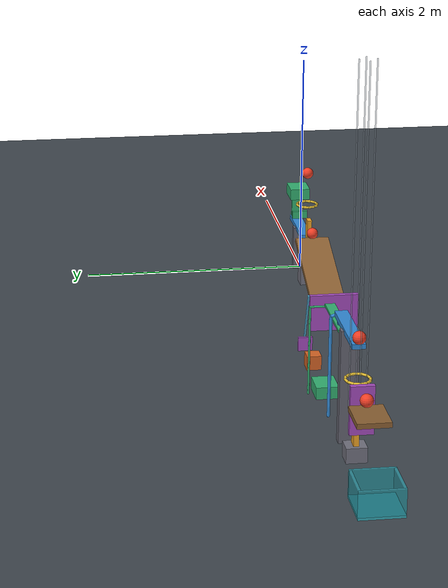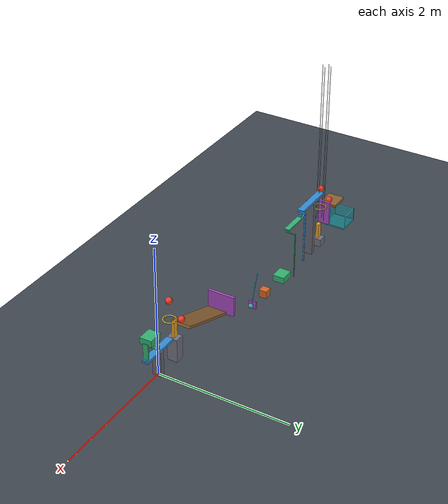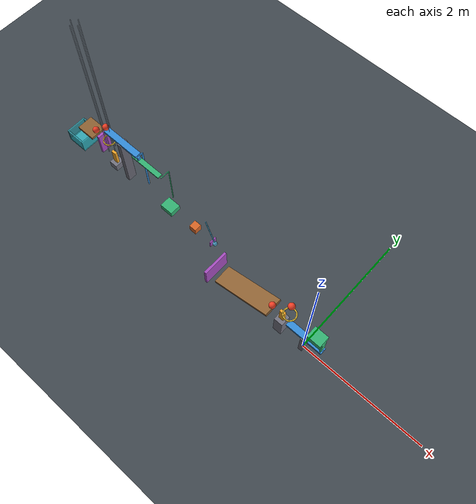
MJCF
<mujoco model="passive_chain_reaction">
  <compiler angle="degree" autolimits="true"/>
  <option timestep="0.002" gravity="0 0 -9.81" integrator="implicitfast" solver="Newton" iterations="100" tolerance="1e-9"/>
  <size njmax="3000" nconmax="600"/>
  <visual>
    <global azimuth="100" elevation="-20"/>
    <headlight ambient="0.45 0.45 0.45" diffuse="0.7 0.7 0.7" specular="0.2 0.2 0.2"/>
  </visual>

  <worldbody>
    <light name="overhead_light" pos="-2 0 5" dir="0 0 -1"/>
    <camera name="overview" pos="-2.4 -7 3.4" xyaxes="1 0 0 0 0.4 0.9165"/>

    <geom name="floor" type="plane" size="8 5 0.1" friction="0.72 0.005 0.001" condim="6" solref="0.01 0.716" solimp="0.95 0.99 0.001" rgba="0.25 0.28 0.31 1"/>

    <body name="ball1" pos="-0.30 0 1.02">
      <freejoint name="ball1_free"/>
      <geom name="ball1_sphere" type="sphere" size="0.05" mass="0.20" friction="0.72 0.005 0.001" condim="6" solref="0.01 0.716" solimp="0.95 0.99 0.001" rgba="0.95 0.25 0.15 1"/>
    </body>

    <!-- Twelve capsule segments; minimum unobstructed diameter is 0.16 m. -->
    <body name="ring1" pos="-0.30 0 0.72">
      <geom name="ring1_01" type="capsule" fromto="0.093175 0 0 0.080692 0.0465875 0" size="0.01" friction="0.72 0.005 0.001" solref="0.01 0.716" rgba="0.9 0.75 0.2 1"/>
      <geom name="ring1_02" type="capsule" fromto="0.080692 0.0465875 0 0.0465875 0.080692 0" size="0.01" friction="0.72 0.005 0.001" solref="0.01 0.716" rgba="0.9 0.75 0.2 1"/>
      <geom name="ring1_03" type="capsule" fromto="0.0465875 0.080692 0 0 0.093175 0" size="0.01" friction="0.72 0.005 0.001" solref="0.01 0.716" rgba="0.9 0.75 0.2 1"/>
      <geom name="ring1_04" type="capsule" fromto="0 0.093175 0 -0.0465875 0.080692 0" size="0.01" friction="0.72 0.005 0.001" solref="0.01 0.716" rgba="0.9 0.75 0.2 1"/>
      <geom name="ring1_05" type="capsule" fromto="-0.0465875 0.080692 0 -0.080692 0.0465875 0" size="0.01" friction="0.72 0.005 0.001" solref="0.01 0.716" rgba="0.9 0.75 0.2 1"/>
      <geom name="ring1_06" type="capsule" fromto="-0.080692 0.0465875 0 -0.093175 0 0" size="0.01" friction="0.72 0.005 0.001" solref="0.01 0.716" rgba="0.9 0.75 0.2 1"/>
      <geom name="ring1_07" type="capsule" fromto="-0.093175 0 0 -0.080692 -0.0465875 0" size="0.01" friction="0.72 0.005 0.001" solref="0.01 0.716" rgba="0.9 0.75 0.2 1"/>
      <geom name="ring1_08" type="capsule" fromto="-0.080692 -0.0465875 0 -0.0465875 -0.080692 0" size="0.01" friction="0.72 0.005 0.001" solref="0.01 0.716" rgba="0.9 0.75 0.2 1"/>
      <geom name="ring1_09" type="capsule" fromto="-0.0465875 -0.080692 0 0 -0.093175 0" size="0.01" friction="0.72 0.005 0.001" solref="0.01 0.716" rgba="0.9 0.75 0.2 1"/>
      <geom name="ring1_10" type="capsule" fromto="0 -0.093175 0 0.0465875 -0.080692 0" size="0.01" friction="0.72 0.005 0.001" solref="0.01 0.716" rgba="0.9 0.75 0.2 1"/>
      <geom name="ring1_11" type="capsule" fromto="0.0465875 -0.080692 0 0.080692 -0.0465875 0" size="0.01" friction="0.72 0.005 0.001" solref="0.01 0.716" rgba="0.9 0.75 0.2 1"/>
      <geom name="ring1_12" type="capsule" fromto="0.080692 -0.0465875 0 0.093175 0 0" size="0.01" friction="0.72 0.005 0.001" solref="0.01 0.716" rgba="0.9 0.75 0.2 1"/>
    </body>

    <body name="lever1" pos="0 0 0.40">
      <joint name="lever1_hinge" type="hinge" axis="0 -1 0" damping="0.04" limited="true" range="0 45" solreflimit="0.004 0.716" solimplimit="0.99 0.999 0.001"/>
      <geom name="lever1_beam" type="box" size="0.30 0.05 0.02" mass="0.48" friction="0.72 0.005 0.001" condim="6" solref="0.01 0.716" rgba="0.2 0.55 0.85 1"/>
      <geom name="lever1_striker" type="sphere" pos="0.29 0 0.015" size="0.015" mass="0.02" friction="0.72 0.005 0.001" solref="0.01 0.716" rgba="0.2 0.55 0.85 1"/>
    </body>

    <body name="lever1_support" pos="0 0 0.20">
      <geom name="lever1_support_column" type="box" size="0.035 0.07 0.20" contype="0" conaffinity="0" rgba="0.4 0.4 0.45 1"/>
    </body>

    <!-- The elevated cart has a rear pickup mast and a low domino striker.
         Their masses are included in the specified 0.50 kg cart mass. -->
    <body name="cart1" pos="0.16 0 0.70">
      <joint name="cart1_slide" type="slide" axis="-1 0 0" damping="0.20" limited="true" range="0 0.65"/>
      <geom name="cart1_chassis" type="box" size="0.11 0.09 0.05" mass="0.43" friction="0.72 0.005 0.001" solref="0.01 0.716" rgba="0.2 0.7 0.45 1"/>
      <geom name="cart1_pickup_mast" type="box" pos="0.11 0 -0.15" size="0.012 0.04 0.13" mass="0.04" friction="0.72 0.005 0.001" solref="0.01 0.716" rgba="0.2 0.7 0.45 1"/>
      <geom name="cart1_domino_striker" type="box" pos="-0.098 0 -0.20" size="0.012 0.07 0.035" mass="0.03" friction="0.72 0.005 0.001" solref="0.01 0.716" rgba="0.2 0.7 0.45 1"/>
    </body>

    <body name="domino1_platform" pos="-0.41 0 0.185">
      <geom name="domino1_platform_box" type="box" size="0.07 0.08 0.185" friction="0.72 0.005 0.001" solref="0.01 0.716" rgba="0.45 0.45 0.5 1"/>
    </body>

    <body name="domino1" pos="-0.41 0 0.49">
      <freejoint name="domino1_free"/>
      <geom name="domino1_box" type="box" size="0.04 0.02 0.12" mass="0.25" friction="0.72 0.005 0.001" condim="6" solref="0.01 0.716" rgba="0.95 0.65 0.15 1"/>
    </body>

    <body name="ball2" pos="-0.590101 0 0.539005">
      <freejoint name="ball2_free"/>
      <geom name="ball2_sphere" type="sphere" size="0.05" mass="0.20" friction="0.72 0.005 0.001" condim="6" solref="0.01 0.716" rgba="0.95 0.25 0.15 1"/>
    </body>

    <!-- The upper surface has length 1.00 m, width 0.30 m,
         inclination 20 degrees, and low-end height 0.15 m. -->
    <body name="ramp1" pos="-1.036006 0 0.302216" quat="0.984807753 0 -0.173648178 0">
      <geom name="ramp1_deck" type="box" size="0.50 0.15 0.02" friction="0.72 0.005 0.001" condim="6" solref="0.01 0.716" rgba="0.55 0.38 0.2 1"/>
    </body>

    <body name="door1" pos="-1.632693 0.21 0.19">
      <joint name="door1_hinge" type="hinge" axis="0 0 -1" damping="0.04" limited="true" range="0 70" solreflimit="0.004 0.716" solimplimit="0.99 0.999 0.001"/>
      <geom name="door1_panel" type="box" pos="0 -0.21 0" size="0.02 0.21 0.16" mass="0.42" friction="0.72 0.005 0.001" solref="0.01 0.716" rgba="0.65 0.3 0.75 1"/>
      <geom name="door1_pendulum_latch" type="box" pos="-0.352307 0.10 -0.13" size="0.01 0.06 0.06" mass="0.03" friction="0.72 0.005 0.001" solref="0.01 0.716" rgba="0.65 0.3 0.75 1"/>
    </body>

    <body name="pendulum1" pos="-2.102784 0.31 0.532759" euler="0 -19 0">
      <joint name="pendulum1_hinge" type="hinge" axis="0 1 0" damping="0.04" stiffness="15" springref="38" limited="true" range="0 38" solreflimit="0.004 0.716" solimplimit="0.99 0.999 0.001"/>
      <geom name="pendulum1_rod" type="capsule" fromto="0 0 0 0 0 -0.50" size="0.009" mass="0.08" friction="0.72 0.005 0.001" solref="0.01 0.716" rgba="0.3 0.65 0.8 1"/>
      <geom name="pendulum1_bob" type="sphere" pos="0 0 -0.50" size="0.035" mass="0.27" friction="0.72 0.005 0.001" condim="6" solref="0.01 0.716" rgba="0.3 0.65 0.8 1"/>
    </body>

    <body name="block1" pos="-2.34 0.31 0.06">
      <freejoint name="block1_free"/>
      <geom name="block1_cube" type="box" size="0.06 0.06 0.06" mass="0.35" friction="0.72 0.005 0.001" condim="6" solref="0.01 0.716" rgba="0.85 0.4 0.15 1"/>
    </body>

    <!-- The latch plate travels with cart2. After approximately 0.42 m,
         its trailing edge clears the seesaw's low latch lug. -->
    <body name="cart2" pos="-2.86 0.31 0.051">
      <joint name="cart2_slide" type="slide" axis="-1 0 0" damping="0.20" limited="true" range="0 0.54"/>
      <geom name="cart2_chassis" type="box" size="0.11 0.09 0.05" mass="0.42" friction="0.72 0.005 0.001" solref="0.01 0.716" rgba="0.2 0.7 0.45 1"/>
      <geom name="cart2_latch_plate" type="box" pos="-0.375 0 0.749" size="0.265 0.04 0.01" mass="0.04" friction="0.72 0.005 0.001" solref="0.01 0.716" rgba="0.2 0.7 0.45 1"/>
      <geom name="cart2_latch_column" type="capsule" fromto="-0.09 0.15 0 -0.09 0.15 0.729" size="0.008" mass="0.02" friction="0.72 0.005 0.001" solref="0.01 0.716" rgba="0.2 0.7 0.45 1"/>
      <geom name="cart2_latch_crossbar" type="capsule" fromto="-0.09 0.15 0.729 -0.09 0 0.729" size="0.008" mass="0.02" friction="0.72 0.005 0.001" solref="0.01 0.716" rgba="0.2 0.7 0.45 1"/>
    </body>

    <body name="seesaw1" pos="-3.715 0.31 0.90" quat="0 0 0 1">
      <joint name="seesaw1_hinge" type="hinge" axis="0 -1 0" damping="0.04" stiffness="8" springref="42" limited="true" range="0 42" solreflimit="0.004 0.716" solimplimit="0.99 0.999 0.001"/>
      <geom name="seesaw1_beam" type="box" size="0.325 0.05 0.02" mass="0.43" friction="0.72 0.005 0.001" condim="6" solref="0.01 0.716" rgba="0.2 0.55 0.85 1"/>
      <geom name="seesaw1_latch_lug" type="box" pos="-0.325 0 -0.06" size="0.018 0.025 0.03" mass="0.03" friction="0.72 0.005 0.001" solref="0.01 0.716" rgba="0.2 0.55 0.85 1"/>
      <geom name="seesaw1_low_striker" type="capsule" fromto="-0.325 -0.075 -0.025 -0.325 -0.075 -0.84" size="0.012" mass="0.05" friction="0.72 0.005 0.001" solref="0.01 0.716" rgba="0.2 0.55 0.85 1"/>
      <geom name="seesaw1_striker_crossbar" type="capsule" fromto="-0.325 0 0 -0.325 -0.075 -0.025" size="0.012" mass="0.04" friction="0.72 0.005 0.001" solref="0.01 0.716" rgba="0.2 0.55 0.85 1"/>
    </body>

    <body name="seesaw1_support" pos="-3.715 0.31 0.45">
      <geom name="seesaw1_support_column" type="box" size="0.035 0.07 0.45" contype="0" conaffinity="0" rgba="0.4 0.4 0.45 1"/>
    </body>

    <body name="ball3" pos="-4.04 0.31 0.97">
      <freejoint name="ball3_free"/>
      <geom name="ball3_sphere" type="sphere" size="0.05" mass="0.20" contype="3" conaffinity="3" friction="0.72 0.005 0.001" condim="6" solref="0.01 0.716" rgba="0.95 0.25 0.15 1"/>
    </body>

    <!-- Ball-only guides enforce a nearly vertical launch and return.
         Collision bit 2 lets the beam pass through the guide structure. -->
    <body name="ball3_vertical_guide" pos="-4.04 0.31 0">
      <geom name="ball3_guide_x_positive" type="capsule" fromto="0.064 0 0.43 0.064 0 3.0" size="0.005" contype="2" conaffinity="2" friction="0.72 0.005 0.001" solref="0.01 0.716" rgba="0.65 0.7 0.75 0.35"/>
      <geom name="ball3_guide_x_negative" type="capsule" fromto="-0.064 0 0.43 -0.064 0 3.0" size="0.005" contype="2" conaffinity="2" friction="0.72 0.005 0.001" solref="0.01 0.716" rgba="0.65 0.7 0.75 0.35"/>
      <geom name="ball3_guide_y_positive" type="capsule" fromto="0 0.064 0.43 0 0.064 3.0" size="0.005" contype="2" conaffinity="2" friction="0.72 0.005 0.001" solref="0.01 0.716" rgba="0.65 0.7 0.75 0.35"/>
      <geom name="ball3_guide_y_negative" type="capsule" fromto="0 -0.064 0.43 0 -0.064 3.0" size="0.005" contype="2" conaffinity="2" friction="0.72 0.005 0.001" solref="0.01 0.716" rgba="0.65 0.7 0.75 0.35"/>
    </body>

    <body name="ring2" pos="-4.04 0.31 0.65">
      <geom name="ring2_01" type="capsule" fromto="0.093175 0 0 0.080692 0.0465875 0" size="0.01" friction="0.72 0.005 0.001" solref="0.01 0.716" rgba="0.9 0.75 0.2 1"/>
      <geom name="ring2_02" type="capsule" fromto="0.080692 0.0465875 0 0.0465875 0.080692 0" size="0.01" friction="0.72 0.005 0.001" solref="0.01 0.716" rgba="0.9 0.75 0.2 1"/>
      <geom name="ring2_03" type="capsule" fromto="0.0465875 0.080692 0 0 0.093175 0" size="0.01" friction="0.72 0.005 0.001" solref="0.01 0.716" rgba="0.9 0.75 0.2 1"/>
      <geom name="ring2_04" type="capsule" fromto="0 0.093175 0 -0.0465875 0.080692 0" size="0.01" friction="0.72 0.005 0.001" solref="0.01 0.716" rgba="0.9 0.75 0.2 1"/>
      <geom name="ring2_05" type="capsule" fromto="-0.0465875 0.080692 0 -0.080692 0.0465875 0" size="0.01" friction="0.72 0.005 0.001" solref="0.01 0.716" rgba="0.9 0.75 0.2 1"/>
      <geom name="ring2_06" type="capsule" fromto="-0.080692 0.0465875 0 -0.093175 0 0" size="0.01" friction="0.72 0.005 0.001" solref="0.01 0.716" rgba="0.9 0.75 0.2 1"/>
      <geom name="ring2_07" type="capsule" fromto="-0.093175 0 0 -0.080692 -0.0465875 0" size="0.01" friction="0.72 0.005 0.001" solref="0.01 0.716" rgba="0.9 0.75 0.2 1"/>
      <geom name="ring2_08" type="capsule" fromto="-0.080692 -0.0465875 0 -0.0465875 -0.080692 0" size="0.01" friction="0.72 0.005 0.001" solref="0.01 0.716" rgba="0.9 0.75 0.2 1"/>
      <geom name="ring2_09" type="capsule" fromto="-0.0465875 -0.080692 0 0 -0.093175 0" size="0.01" friction="0.72 0.005 0.001" solref="0.01 0.716" rgba="0.9 0.75 0.2 1"/>
      <geom name="ring2_10" type="capsule" fromto="0 -0.093175 0 0.0465875 -0.080692 0" size="0.01" friction="0.72 0.005 0.001" solref="0.01 0.716" rgba="0.9 0.75 0.2 1"/>
      <geom name="ring2_11" type="capsule" fromto="0.0465875 -0.080692 0 0.080692 -0.0465875 0" size="0.01" friction="0.72 0.005 0.001" solref="0.01 0.716" rgba="0.9 0.75 0.2 1"/>
      <geom name="ring2_12" type="capsule" fromto="0.080692 -0.0465875 0 0.093175 0 0" size="0.01" friction="0.72 0.005 0.001" solref="0.01 0.716" rgba="0.9 0.75 0.2 1"/>
    </body>

    <body name="domino2_platform" pos="-4.015 0.31 0.06">
      <geom name="domino2_platform_box" type="box" size="0.07 0.08 0.06" friction="0.72 0.005 0.001" solref="0.01 0.716" rgba="0.45 0.45 0.5 1"/>
    </body>

    <body name="domino2" pos="-4.015 0.31 0.24">
      <freejoint name="domino2_free"/>
      <geom name="domino2_box" type="box" size="0.04 0.02 0.12" mass="0.25" friction="0.72 0.005 0.001" condim="6" solref="0.01 0.716" rgba="0.95 0.65 0.15 1"/>
    </body>

    <body name="flap1" pos="-4.195 0.31 0.67">
      <joint name="flap1_hinge" type="hinge" axis="0 1 0" damping="0.04" limited="true" range="0 60" solreflimit="0.004 0.716" solimplimit="0.99 0.999 0.001"/>
      <geom name="flap1_panel" type="box" pos="0 0 -0.19" size="0.02 0.09 0.19" mass="0.28" friction="0.72 0.005 0.001" solref="0.01 0.716" rgba="0.65 0.3 0.75 1"/>
    </body>

    <body name="shelf1" pos="-4.46 0.31 0.55">
      <geom name="shelf1_deck" type="box" size="0.15 0.125 0.02" friction="0.72 0.005 0.001" condim="6" solref="0.01 0.716" rgba="0.55 0.38 0.2 1"/>
    </body>

    <body name="ball4" pos="-4.345 0.31 0.62">
      <freejoint name="ball4_free"/>
      <geom name="ball4_sphere" type="sphere" size="0.05" mass="0.20" friction="0.72 0.005 0.001" condim="6" solref="0.01 0.716" solimp="0.95 0.99 0.001" rgba="0.95 0.25 0.15 1"/>
    </body>

    <!-- Inner footprint is 0.30 by 0.30 m. The bottom top is z=0.02;
         walls rise 0.20 m above it and have thickness 0.02 m.
         Shelf top z=0.57 is 0.55 m above the cup bottom. -->
    <body name="cup1" pos="-4.76 0.31 0">
      <geom name="cup1_bottom" type="box" pos="0 0 0.01" size="0.17 0.17 0.01" friction="0.72 0.005 0.001" condim="6" solref="0.01 0.716" solimp="0.95 0.99 0.001" rgba="0.2 0.65 0.7 1"/>
      <geom name="cup1_wall_x_positive" type="box" pos="0.16 0 0.12" size="0.01 0.17 0.10" friction="0.72 0.005 0.001" condim="6" solref="0.01 0.716" solimp="0.95 0.99 0.001" rgba="0.2 0.65 0.7 0.8"/>
      <geom name="cup1_wall_x_negative" type="box" pos="-0.16 0 0.12" size="0.01 0.17 0.10" friction="0.72 0.005 0.001" condim="6" solref="0.01 0.716" solimp="0.95 0.99 0.001" rgba="0.2 0.65 0.7 0.8"/>
      <geom name="cup1_wall_y_positive" type="box" pos="0 0.16 0.12" size="0.15 0.01 0.10" friction="0.72 0.005 0.001" condim="6" solref="0.01 0.716" solimp="0.95 0.99 0.001" rgba="0.2 0.65 0.7 0.8"/>
      <geom name="cup1_wall_y_negative" type="box" pos="0 -0.16 0.12" size="0.15 0.01 0.10" friction="0.72 0.005 0.001" condim="6" solref="0.01 0.716" solimp="0.95 0.99 0.001" rgba="0.2 0.65 0.7 0.8"/>
    </body>
  </worldbody>

  <!-- Omitted qpos uses the compiled initial configuration.
       Omitted qvel initializes every degree of freedom to zero. -->
  <keyframe>
    <key name="start" time="0"/>
  </keyframe>
</mujoco>
